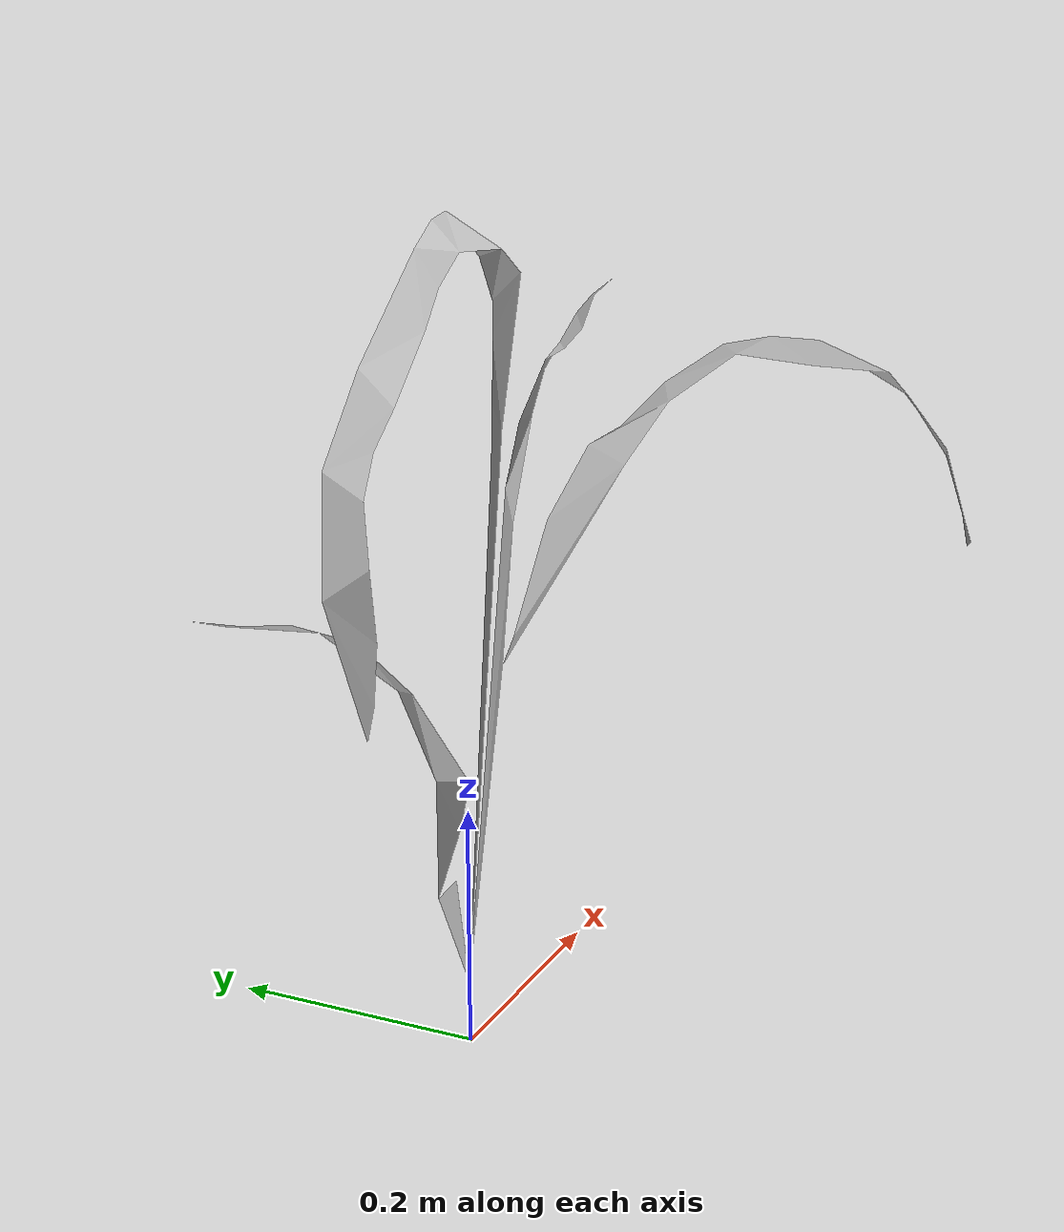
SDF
<?xml version="1.0" ?>
<sdf version="1.6">
  <model name='maize_01'>
    <pose frame=''>0 0 0.05 0 -0 0</pose>
    <link name='maize_01_link'>
      <inertial>
        <pose>0 0 0.01 0 0 0</pose>
        <mass>0.3</mass>
        <inertia>
          <ixx>0.0033416667</ixx>
          <ixy>0</ixy>
          <ixz>0</ixz>
          <iyy>0.0033416667</iyy>
          <iyz>0</iyz>
          <izz>0.000016666667</izz>
        </inertia>
        <pose>0 0 0.1 0 0 0</pose>
      </inertial>
      <collision name='collision'>
        <pose>0 0 0.2 0 -0 0</pose>
        <geometry>
          <box>
            <size>0.02 0.02 0.4</size>
          </box>
        </geometry>
        <max_contacts>10</max_contacts>
        <surface>
          <contact>
            <ode/>
          </contact>
          <bounce/>
          <friction>
            <ode>
              <mu>10</mu>
              <mu2>10</mu2>
            </ode>
          </friction>
        </surface>
      </collision>
      <visual name='visual'>
        <geometry>
          <mesh>
            <uri>model://maize_01/meshes/maize_01.dae</uri>
            <scale>0.683166466464586 0.683166466464586 0.683166466464586</scale>
          </mesh>
        </geometry>
      </visual>
      <self_collide>0</self_collide>
      <enable_wind>0</enable_wind>
      <kinematic>0</kinematic>
    </link>
  </model>
</sdf>
